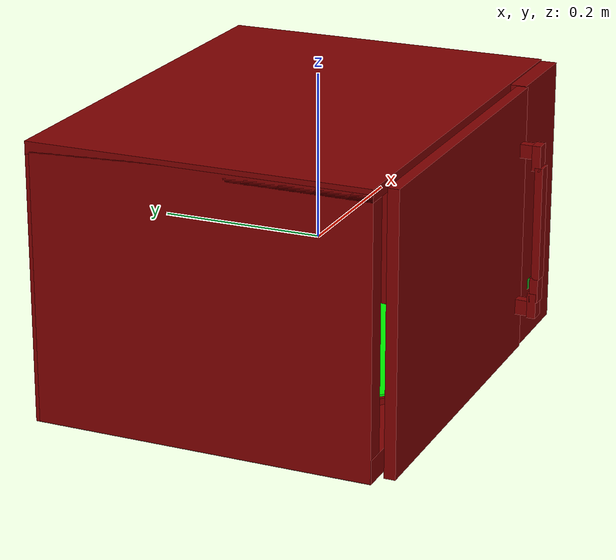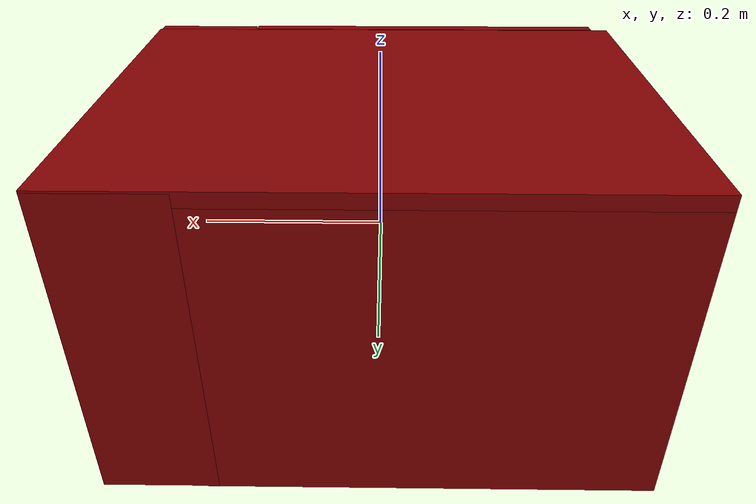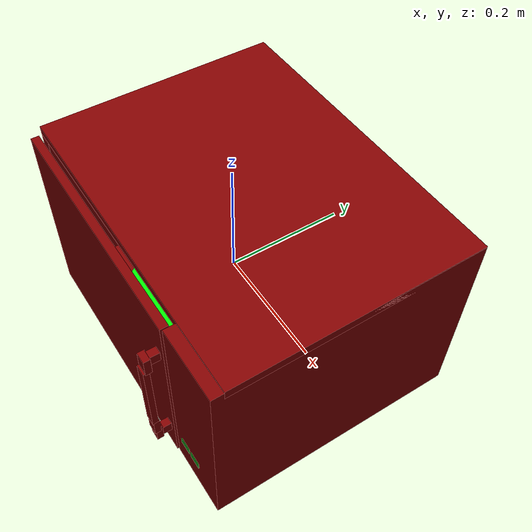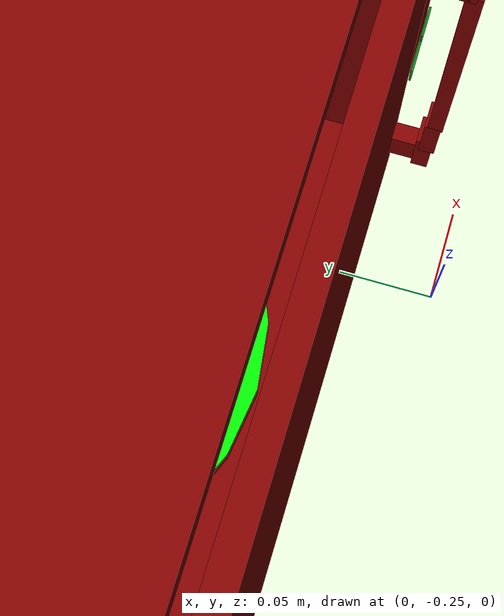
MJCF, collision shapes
<?xml version='1.0' encoding='UTF-8'?>
<mujoco model="model">
  <option timestep="0.002" gravity="0.0 0.0 -9.81"/>
  <compiler angle="radian"/>
  <asset>
    <mesh file="visuals/door.obj" name="door_vis"/>
    <mesh file="visuals/door_Clear.obj" name="door_Clear_vis"/>
    <mesh file="visuals/Body001.obj" name="Body001_vis"/>
    <mesh file="visuals/Disc001.obj" name="Disc001_vis"/>
    <texture file="visuals/T_BC001.png" name="Body001_material" type="2d"/>
    <material name="Body001_material" rgba="1 1 1 1.0" texture="Body001_material" shininess="0.4" specular="6"/>
    <texture file="visuals/T_BC001.png" name="door_material" type="2d"/>
    <material name="door_material" rgba="1 1 1 1.0" texture="door_material" shininess="0.5" specular="11"/>
    <material name="door_Clear_material" rgba="0.20077744126319885 0.20077744126319885 0.20077744126319885 0.800000011920929" shininess="0.5" specular="0.3103448502657381"/>
    <texture file="visuals/T_BC001.png" name="Disc001_material" type="2d"/>
    <material name="Disc001_material" rgba="1 1 1 1.0" texture="Disc001_material" shininess="0.05" specular="0.657381"/>
  </asset>
  <default>
    <default class="visual">
      <geom conaffinity="0" contype="0" group="1" type="mesh"/>
    </default>
    <default class="collision">
      <geom group="0" rgba="0.5 0 0 0.5"/>
    </default>
    <default class="spawn">
      <geom group="0" rgba="1 1 1 0.5" contype="0" conaffinity="0"/>
      <site group="0" rgba="1 1 1 0.5"/>
    </default>
    <default class="region">
      <geom group="1" conaffinity="0" contype="0" rgba="0 1 0 0"/>
    </default>
  </default>
  <worldbody>
    <body>
      <body name="object">
        <geom class="collision" type="cylinder" pos="-0.04455467 0.00746983 -0.12630755" size="0.17360438406467438 0.0012126457877457142" quat="1.0 0.0 0.0 0.0" name="tray" rgba="0 1 0 0.5"/>
        <geom class="collision" type="box" pos="0.21900322 -0.20385806 -0.09367545" size="0.011469731107354164 0.0006778106326237321 0.00612998753786087" quat="1.0 0.0 0.0 0.0" name="start_button" rgba="0.0 0.5 0 0.5"/>
        <geom class="collision" type="box" pos="0.19209343 -0.20391321 -0.09366934" size="0.011334268376231194 0.0006778127863071859 0.006057601887732744" quat="1.0 0.0 0.0 0.0" name="stop_button" rgba="0.0 0.5 0 0.5"/>
        <geom mesh="Body001_vis" type="mesh" solimp="0.998 0.998 0.001" solref="0.001 1" friction="0.95 0.3 0.1" class="visual" material="Body001_material"/>
        <geom class="collision" type="box" pos="0.00000002 0.02582202 0.16092953" size="0.2749999165534973 0.20708754658699036 0.007470408920198679" quat="1.0 0.0 0.0 0.0"/>
        <geom class="collision" type="box" pos="-0.26279849 0.02358145 -0.00283944" size="0.012201599776744843 0.20482203364372253 0.16503989696502686" quat="1.0 0.0 0.0 0.0"/>
        <geom class="collision" type="box" pos="-0.04900579 0.21668215 -0.00746386" size="0.22599411010742188 0.016229622066020966 0.16092294454574585" quat="1.0 0.0 0.0 0.0"/>
        <geom class="collision" type="box" pos="0.21677347 0.01607733 -0.00080173" size="0.05822645500302315 0.2168346345424652 0.1670721173286438" quat="1.0 0.0 0.0 0.0"/>
        <geom class="collision" type="box" pos="0.00000085 0.02358145 -0.15418187" size="0.2749978005886078 0.20549042522907257 0.01420481875538826" quat="1.0 0.0 0.0 0.0"/>
        <body name="door">
          <joint axis="0.0 0.0 1.0" pos="-0.26788872 -0.19784257 -0.00367214" limited="true" name="microjoint" range="-1.5707963267948966 0.0" type="hinge" damping="1" frictionloss="1" armature=".01" stiffness="0.05"/>
          <geom mesh="door_vis" type="mesh" solimp="0.998 0.998 0.001" solref="0.001 1" friction="0.95 0.3 0.1" class="visual" material="door_material"/>
          <geom class="collision" type="box" pos="-0.05909067 -0.19089340 -0.01438447" size="0.16923785209655762 0.00038382320781238377 0.0934218317270279" quat="1.0 0.0 0.0 0.0"/>
          <geom class="collision" type="box" pos="0.14097391 -0.21141426 -0.10636541" size="0.006189691834151745 0.00963758397847414 0.009602737613022327" quat="1.0 0.0 0.0 0.0"/>
          <geom class="collision" type="box" pos="0.14097391 -0.21141426 0.09305353" size="0.006189699750393629 0.009637625887989998 0.00846958253532648" quat="1.0 0.0 0.0 0.0"/>
          <geom class="collision" type="box" pos="0.14097391 -0.22706163 -0.08056697" size="0.009110740385949612 0.005179787054657936 0.01571737416088581" quat="1.0 0.0 0.0 0.0"/>
          <geom class="collision" type="box" pos="0.14097390 -0.22483857 -0.10123515" size="0.009110698476433754 0.005459960550069809 0.01576252654194832" quat="1.0 0.0 0.0 0.0"/>
          <geom class="collision" type="box" pos="0.14097390 -0.22471839 0.08667571" size="0.009110698476433754 0.0053551821038126945 0.0157462190836668" quat="1.0 0.0 0.0 0.0"/>
          <geom class="collision" type="box" pos="0.14097390 -0.22848554 0.00421343" size="0.00911069568246603 0.004860551096498966 0.0707850381731987" quat="1.0 0.0 0.0 0.0" name="door_handle_main"/>
          <geom class="collision" type="box" pos="-0.05072383 -0.19685031 0.00003493" size="0.20758512616157532 0.006730121094733477 0.16617514193058014" quat="1.0 0.0 0.0 0.0" name="door_main"/>
          <body name="door_Clear">
            <geom mesh="door_Clear_vis" type="mesh" solimp="0.998 0.998 0.001" solref="0.001 1" friction="0.95 0.3 0.1" class="visual" material="door_Clear_material"/>
            <geom class="collision" type="box" pos="-0.05909067 -0.19089340 -0.01438447" size="0.16923785209655762 0.00038382320781238377 0.0934218317270279" quat="1.0 0.0 0.0 0.0"/>
          </body>
        </body>
        <body name="Disc001">
          <joint axis="0.0 0.0 1.0" pos="-0.04455467 0.00746983 -0.13419536" limited="false" name="Disc001_joint" range="0 360" type="hinge" damping="1" frictionloss="1" armature=".01" stiffness="0.05"/>
          <geom mesh="Disc001_vis" type="mesh" solimp="0.998 0.998 0.001" solref="0.001 1" friction="0.95 0.3 0.1" class="visual" material="Disc001_material"/>
          <geom class="collision" type="cylinder" pos="-0.04455467 0.00746983 -0.13372723" size="0.17360438406467438 0.003919103182852268" quat="1.0 0.0 0.0 0.0"/>
        </body>
        <geom class="region" name="reg_int" type="box" pos="-0.04600364 0.0064275849999999995 0.011398745000000002" size="0.20028162 0.189856395 0.137493545"/>
        <geom class="region" name="reg_main" type="box" pos="2.9999999984209325e-08 0.014341470000000009 6.615000000001481e-06" size="0.27599992 0.21957052999999999 0.169393375"/>
      <geom class="region" name="reg_tray" type="cylinder" pos="-0.04455467 0.00746983 0.011898692893872853" size="0.17360438406467438 0.13599359710612713"/></body>
    </body>
  </worldbody>
  <actuator>
    <motor name="microjoint_actuator" joint="microjoint" gear="10"/>
    <motor name="Disc001_joint_actuator" joint="Disc001_joint" gear="10"/>
  </actuator>
</mujoco>
